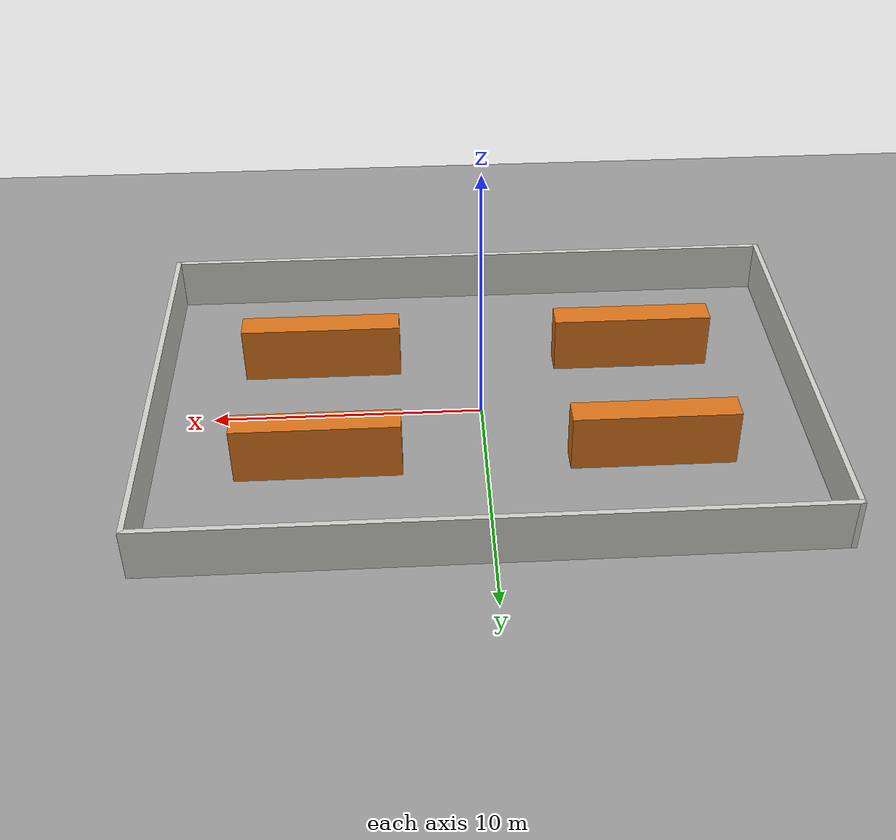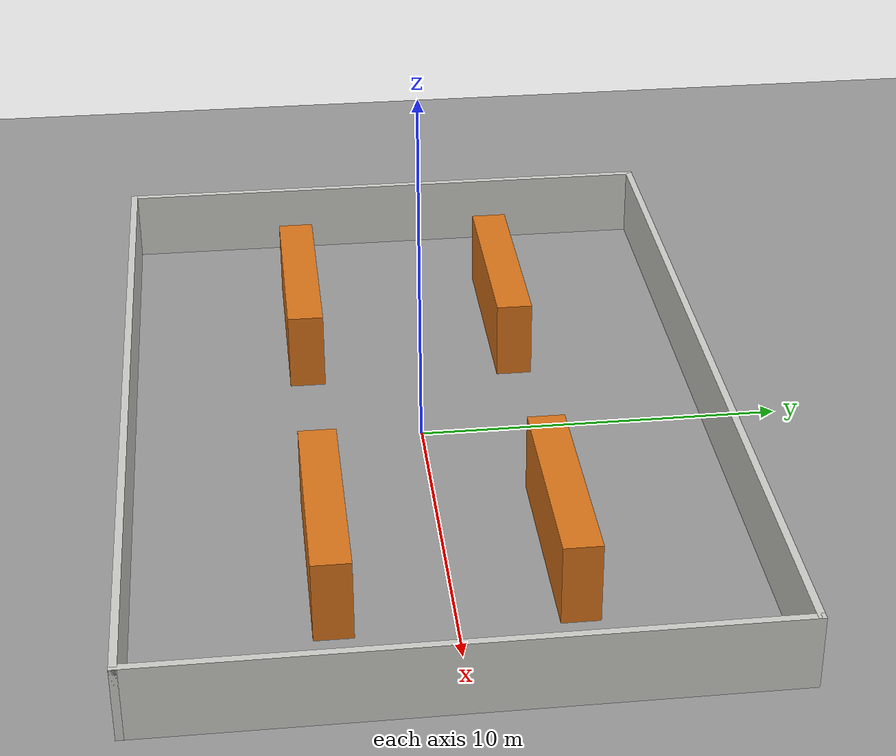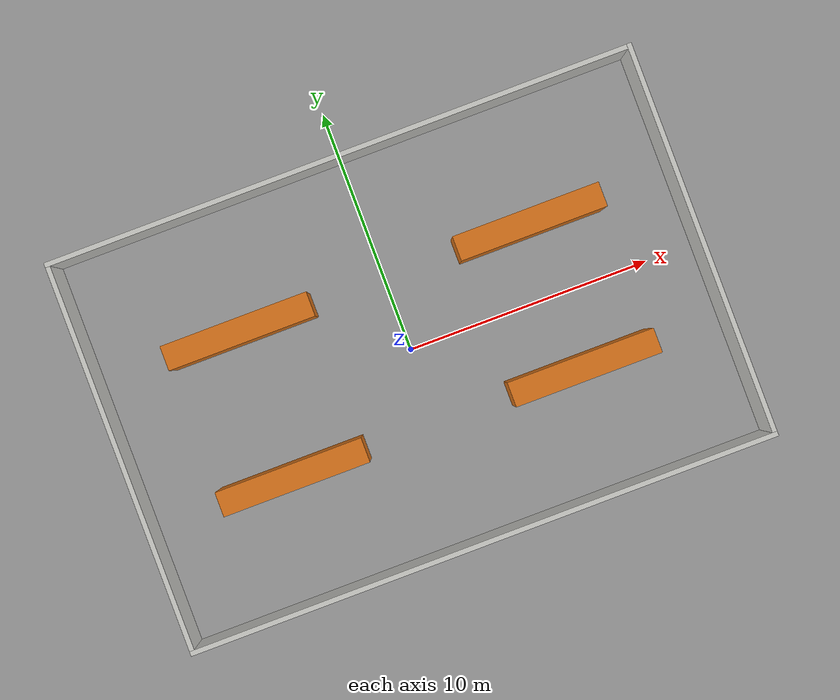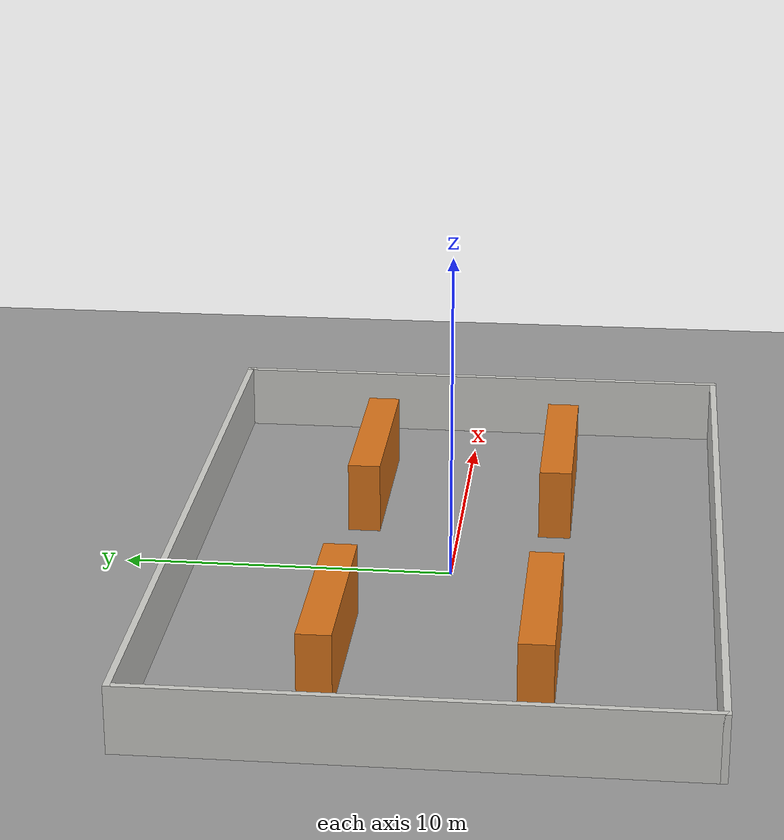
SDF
<?xml version="1.0" ?>
<!-- GENERATED by simulation/gazebo/generate_world.py from config/maps/gazebo_warehouse.json. Do not edit. -->
<sdf version="1.9">
  <world name="nayantra_warehouse">
    <physics name="fast" type="ignored">
      <max_step_size>0.004</max_step_size>
      <real_time_factor>1.0</real_time_factor>
    </physics>
    <plugin filename="gz-sim-physics-system" name="gz::sim::systems::Physics"/>
    <plugin filename="gz-sim-user-commands-system" name="gz::sim::systems::UserCommands"/>
    <plugin filename="gz-sim-scene-broadcaster-system" name="gz::sim::systems::SceneBroadcaster"/>
    <plugin filename="gz-sim-sensors-system" name="gz::sim::systems::Sensors">
      <render_engine>ogre2</render_engine>
    </plugin>
    <gravity>0 0 -9.8</gravity>
    <scene>
      <ambient>0.6 0.6 0.6 1</ambient>
      <background>0.75 0.8 0.85 1</background>
    </scene>
    <light type="directional" name="sun">
      <cast_shadows>true</cast_shadows>
      <pose>0 0 10 0 0 0</pose>
      <diffuse>0.9 0.9 0.9 1</diffuse>
      <specular>0.2 0.2 0.2 1</specular>
      <direction>-0.4 0.2 -1</direction>
    </light>
    <model name="ground">
      <static>true</static>
      <link name="link">
        <collision name="collision">
          <geometry><plane><normal>0 0 1</normal><size>44.00 36.00</size></plane></geometry>
        </collision>
        <visual name="visual">
          <geometry><plane><normal>0 0 1</normal><size>44.00 36.00</size></plane></geometry>
          <material><ambient>0.55 0.55 0.55 1</ambient><diffuse>0.6 0.6 0.6 1</diffuse></material>
        </visual>
      </link>
    </model>
    <model name="wall_1">
      <static>true</static>
      <pose>0.0000 -8.0000 1.0000 0 0 0.000000</pose>
      <link name="link">
        <collision name="collision"><geometry><box><size>24.2000 0.2000 2.0000</size></box></geometry></collision>
        <visual name="visual">
          <geometry><box><size>24.2000 0.2000 2.0000</size></box></geometry>
          <material><ambient>0.8 0.8 0.78 1</ambient><diffuse>0.8 0.8 0.78 1</diffuse></material>
        </visual>
      </link>
    </model>
    <model name="wall_2">
      <static>true</static>
      <pose>12.0000 0.0000 1.0000 0 0 1.570796</pose>
      <link name="link">
        <collision name="collision"><geometry><box><size>16.2000 0.2000 2.0000</size></box></geometry></collision>
        <visual name="visual">
          <geometry><box><size>16.2000 0.2000 2.0000</size></box></geometry>
          <material><ambient>0.8 0.8 0.78 1</ambient><diffuse>0.8 0.8 0.78 1</diffuse></material>
        </visual>
      </link>
    </model>
    <model name="wall_3">
      <static>true</static>
      <pose>0.0000 8.0000 1.0000 0 0 3.141593</pose>
      <link name="link">
        <collision name="collision"><geometry><box><size>24.2000 0.2000 2.0000</size></box></geometry></collision>
        <visual name="visual">
          <geometry><box><size>24.2000 0.2000 2.0000</size></box></geometry>
          <material><ambient>0.8 0.8 0.78 1</ambient><diffuse>0.8 0.8 0.78 1</diffuse></material>
        </visual>
      </link>
    </model>
    <model name="wall_4">
      <static>true</static>
      <pose>-12.0000 0.0000 1.0000 0 0 -1.570796</pose>
      <link name="link">
        <collision name="collision"><geometry><box><size>16.2000 0.2000 2.0000</size></box></geometry></collision>
        <visual name="visual">
          <geometry><box><size>16.2000 0.2000 2.0000</size></box></geometry>
          <material><ambient>0.8 0.8 0.78 1</ambient><diffuse>0.8 0.8 0.78 1</diffuse></material>
        </visual>
      </link>
    </model>
    <model name="shelf_1">
      <static>true</static>
      <pose>-6.0000 3.0000 1.1000 0 0 0.000000</pose>
      <link name="link">
        <collision name="collision"><geometry><box><size>6.0000 1.0000 2.2000</size></box></geometry></collision>
        <visual name="visual">
          <geometry><box><size>6.0000 1.0000 2.2000</size></box></geometry>
          <material><ambient>0.85 0.45 0.1 1</ambient><diffuse>0.85 0.45 0.1 1</diffuse></material>
        </visual>
      </link>
    </model>
    <model name="shelf_2">
      <static>true</static>
      <pose>6.0000 3.0000 1.1000 0 0 0.000000</pose>
      <link name="link">
        <collision name="collision"><geometry><box><size>6.0000 1.0000 2.2000</size></box></geometry></collision>
        <visual name="visual">
          <geometry><box><size>6.0000 1.0000 2.2000</size></box></geometry>
          <material><ambient>0.85 0.45 0.1 1</ambient><diffuse>0.85 0.45 0.1 1</diffuse></material>
        </visual>
      </link>
    </model>
    <model name="shelf_3">
      <static>true</static>
      <pose>-6.0000 -3.0000 1.1000 0 0 0.000000</pose>
      <link name="link">
        <collision name="collision"><geometry><box><size>6.0000 1.0000 2.2000</size></box></geometry></collision>
        <visual name="visual">
          <geometry><box><size>6.0000 1.0000 2.2000</size></box></geometry>
          <material><ambient>0.85 0.45 0.1 1</ambient><diffuse>0.85 0.45 0.1 1</diffuse></material>
        </visual>
      </link>
    </model>
    <model name="shelf_4">
      <static>true</static>
      <pose>6.0000 -3.0000 1.1000 0 0 0.000000</pose>
      <link name="link">
        <collision name="collision"><geometry><box><size>6.0000 1.0000 2.2000</size></box></geometry></collision>
        <visual name="visual">
          <geometry><box><size>6.0000 1.0000 2.2000</size></box></geometry>
          <material><ambient>0.85 0.45 0.1 1</ambient><diffuse>0.85 0.45 0.1 1</diffuse></material>
        </visual>
      </link>
    </model>
  </world>
</sdf>
